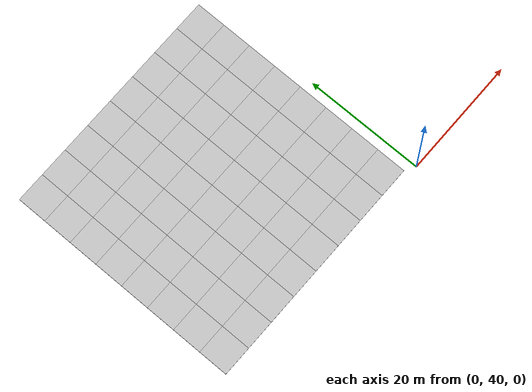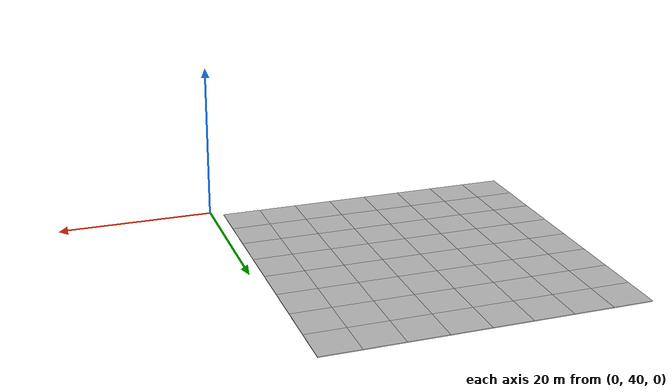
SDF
<sdf version="1.7">
 <world name="default">
  <model name="mud_plane_80x80_1">
   <model name="mud_plane_40x40">
    <model name="mud_plane_20x20">
     <model name="mud_plane">
      <static>1</static>
      <link name="link">
       <collision name="collision"><geometry><box><size>10 10 0.1</size></box></geometry></collision>
       <visual name="visual_1">
        <pose>-2.5 2.5 -0.05 0 -0 0</pose>
        <cast_shadows>0</cast_shadows>
        <geometry><box><size>5 5 0.1</size></box></geometry>
        <material>
         <script>
          <uri>model://mud_plane/materials/scripts</uri>
          <uri>model://mud_plane/materials/textures</uri>
          <name>vrc/mud</name>
         </script>
        </material>
       </visual>
       <visual name="visual_2">
        <pose>2.5 2.5 -0.05 0 -0 0</pose>
        <cast_shadows>0</cast_shadows>
        <geometry><box><size>5 5 0.1</size></box></geometry>
        <material>
         <script>
          <uri>model://mud_plane/materials/scripts</uri>
          <uri>model://mud_plane/materials/textures</uri>
          <name>vrc/mud</name>
         </script>
        </material>
       </visual>
       <visual name="visual_3">
        <pose>2.5 -2.5 -0.05 0 -0 0</pose>
        <cast_shadows>0</cast_shadows>
        <geometry><box><size>5 5 0.1</size></box></geometry>
        <material>
         <script>
          <uri>model://mud_plane/materials/scripts</uri>
          <uri>model://mud_plane/materials/textures</uri>
          <name>vrc/mud</name>
         </script>
        </material>
       </visual>
       <visual name="visual_4">
        <pose>-2.5 -2.5 -0.05 0 -0 0</pose>
        <cast_shadows>0</cast_shadows>
        <geometry><box><size>5 5 0.1</size></box></geometry>
        <material>
         <script>
          <uri>model://mud_plane/materials/scripts</uri>
          <uri>model://mud_plane/materials/textures</uri>
          <name>vrc/mud</name>
         </script>
        </material>
       </visual>
      </link>
      <pose>-4.99986 -4.99991 0 0 -0 0</pose>
     </model>
     <model name="mud_plane_0">
      <static>1</static>
      <link name="link">
       <collision name="collision"><geometry><box><size>10 10 0.1</size></box></geometry></collision>
       <visual name="visual_1">
        <pose>-2.5 2.5 -0.05 0 -0 0</pose>
        <cast_shadows>0</cast_shadows>
        <geometry><box><size>5 5 0.1</size></box></geometry>
        <material>
         <script>
          <uri>model://mud_plane/materials/scripts</uri>
          <uri>model://mud_plane/materials/textures</uri>
          <name>vrc/mud</name>
         </script>
        </material>
       </visual>
       <visual name="visual_2">
        <pose>2.5 2.5 -0.05 0 -0 0</pose>
        <cast_shadows>0</cast_shadows>
        <geometry><box><size>5 5 0.1</size></box></geometry>
        <material>
         <script>
          <uri>model://mud_plane/materials/scripts</uri>
          <uri>model://mud_plane/materials/textures</uri>
          <name>vrc/mud</name>
         </script>
        </material>
       </visual>
       <visual name="visual_3">
        <pose>2.5 -2.5 -0.05 0 -0 0</pose>
        <cast_shadows>0</cast_shadows>
        <geometry><box><size>5 5 0.1</size></box></geometry>
        <material>
         <script>
          <uri>model://mud_plane/materials/scripts</uri>
          <uri>model://mud_plane/materials/textures</uri>
          <name>vrc/mud</name>
         </script>
        </material>
       </visual>
       <visual name="visual_4">
        <pose>-2.5 -2.5 -0.05 0 -0 0</pose>
        <cast_shadows>0</cast_shadows>
        <geometry><box><size>5 5 0.1</size></box></geometry>
        <material>
         <script>
          <uri>model://mud_plane/materials/scripts</uri>
          <uri>model://mud_plane/materials/textures</uri>
          <name>vrc/mud</name>
         </script>
        </material>
       </visual>
      </link>
      <pose>-4.99946 4.99954 0 0 -0 0</pose>
     </model>
     <model name="mud_plane_1">
      <static>1</static>
      <link name="link">
       <collision name="collision"><geometry><box><size>10 10 0.1</size></box></geometry></collision>
       <visual name="visual_1">
        <pose>-2.5 2.5 -0.05 0 -0 0</pose>
        <cast_shadows>0</cast_shadows>
        <geometry><box><size>5 5 0.1</size></box></geometry>
        <material>
         <script>
          <uri>model://mud_plane/materials/scripts</uri>
          <uri>model://mud_plane/materials/textures</uri>
          <name>vrc/mud</name>
         </script>
        </material>
       </visual>
       <visual name="visual_2">
        <pose>2.5 2.5 -0.05 0 -0 0</pose>
        <cast_shadows>0</cast_shadows>
        <geometry><box><size>5 5 0.1</size></box></geometry>
        <material>
         <script>
          <uri>model://mud_plane/materials/scripts</uri>
          <uri>model://mud_plane/materials/textures</uri>
          <name>vrc/mud</name>
         </script>
        </material>
       </visual>
       <visual name="visual_3">
        <pose>2.5 -2.5 -0.05 0 -0 0</pose>
        <cast_shadows>0</cast_shadows>
        <geometry><box><size>5 5 0.1</size></box></geometry>
        <material>
         <script>
          <uri>model://mud_plane/materials/scripts</uri>
          <uri>model://mud_plane/materials/textures</uri>
          <name>vrc/mud</name>
         </script>
        </material>
       </visual>
       <visual name="visual_4">
        <pose>-2.5 -2.5 -0.05 0 -0 0</pose>
        <cast_shadows>0</cast_shadows>
        <geometry><box><size>5 5 0.1</size></box></geometry>
        <material>
         <script>
          <uri>model://mud_plane/materials/scripts</uri>
          <uri>model://mud_plane/materials/textures</uri>
          <name>vrc/mud</name>
         </script>
        </material>
       </visual>
      </link>
      <pose>4.99964 -4.99949 0 0 -0 0</pose>
     </model>
     <model name="mud_plane_2">
      <static>1</static>
      <link name="link">
       <collision name="collision"><geometry><box><size>10 10 0.1</size></box></geometry></collision>
       <visual name="visual_1">
        <pose>-2.5 2.5 -0.05 0 -0 0</pose>
        <cast_shadows>0</cast_shadows>
        <geometry><box><size>5 5 0.1</size></box></geometry>
        <material>
         <script>
          <uri>model://mud_plane/materials/scripts</uri>
          <uri>model://mud_plane/materials/textures</uri>
          <name>vrc/mud</name>
         </script>
        </material>
       </visual>
       <visual name="visual_2">
        <pose>2.5 2.5 -0.05 0 -0 0</pose>
        <cast_shadows>0</cast_shadows>
        <geometry><box><size>5 5 0.1</size></box></geometry>
        <material>
         <script>
          <uri>model://mud_plane/materials/scripts</uri>
          <uri>model://mud_plane/materials/textures</uri>
          <name>vrc/mud</name>
         </script>
        </material>
       </visual>
       <visual name="visual_3">
        <pose>2.5 -2.5 -0.05 0 -0 0</pose>
        <cast_shadows>0</cast_shadows>
        <geometry><box><size>5 5 0.1</size></box></geometry>
        <material>
         <script>
          <uri>model://mud_plane/materials/scripts</uri>
          <uri>model://mud_plane/materials/textures</uri>
          <name>vrc/mud</name>
         </script>
        </material>
       </visual>
       <visual name="visual_4">
        <pose>-2.5 -2.5 -0.05 0 -0 0</pose>
        <cast_shadows>0</cast_shadows>
        <geometry><box><size>5 5 0.1</size></box></geometry>
        <material>
         <script>
          <uri>model://mud_plane/materials/scripts</uri>
          <uri>model://mud_plane/materials/textures</uri>
          <name>vrc/mud</name>
         </script>
        </material>
       </visual>
      </link>
      <pose>4.99967 4.99986 0 0 -0 0</pose>
     </model>
     <static>0</static>
     <pose>-9.99895 9.99843 0 0 -0 0</pose>
    </model>
    <model name="mud_plane_20x20_0">
     <model name="mud_plane">
      <static>1</static>
      <link name="link">
       <collision name="collision"><geometry><box><size>10 10 0.1</size></box></geometry></collision>
       <visual name="visual_1">
        <pose>-2.5 2.5 -0.05 0 -0 0</pose>
        <cast_shadows>0</cast_shadows>
        <geometry><box><size>5 5 0.1</size></box></geometry>
        <material>
         <script>
          <uri>model://mud_plane/materials/scripts</uri>
          <uri>model://mud_plane/materials/textures</uri>
          <name>vrc/mud</name>
         </script>
        </material>
       </visual>
       <visual name="visual_2">
        <pose>2.5 2.5 -0.05 0 -0 0</pose>
        <cast_shadows>0</cast_shadows>
        <geometry><box><size>5 5 0.1</size></box></geometry>
        <material>
         <script>
          <uri>model://mud_plane/materials/scripts</uri>
          <uri>model://mud_plane/materials/textures</uri>
          <name>vrc/mud</name>
         </script>
        </material>
       </visual>
       <visual name="visual_3">
        <pose>2.5 -2.5 -0.05 0 -0 0</pose>
        <cast_shadows>0</cast_shadows>
        <geometry><box><size>5 5 0.1</size></box></geometry>
        <material>
         <script>
          <uri>model://mud_plane/materials/scripts</uri>
          <uri>model://mud_plane/materials/textures</uri>
          <name>vrc/mud</name>
         </script>
        </material>
       </visual>
       <visual name="visual_4">
        <pose>-2.5 -2.5 -0.05 0 -0 0</pose>
        <cast_shadows>0</cast_shadows>
        <geometry><box><size>5 5 0.1</size></box></geometry>
        <material>
         <script>
          <uri>model://mud_plane/materials/scripts</uri>
          <uri>model://mud_plane/materials/textures</uri>
          <name>vrc/mud</name>
         </script>
        </material>
       </visual>
      </link>
      <pose>-4.99986 -4.99991 0 0 -0 0</pose>
     </model>
     <model name="mud_plane_0">
      <static>1</static>
      <link name="link">
       <collision name="collision"><geometry><box><size>10 10 0.1</size></box></geometry></collision>
       <visual name="visual_1">
        <pose>-2.5 2.5 -0.05 0 -0 0</pose>
        <cast_shadows>0</cast_shadows>
        <geometry><box><size>5 5 0.1</size></box></geometry>
        <material>
         <script>
          <uri>model://mud_plane/materials/scripts</uri>
          <uri>model://mud_plane/materials/textures</uri>
          <name>vrc/mud</name>
         </script>
        </material>
       </visual>
       <visual name="visual_2">
        <pose>2.5 2.5 -0.05 0 -0 0</pose>
        <cast_shadows>0</cast_shadows>
        <geometry><box><size>5 5 0.1</size></box></geometry>
        <material>
         <script>
          <uri>model://mud_plane/materials/scripts</uri>
          <uri>model://mud_plane/materials/textures</uri>
          <name>vrc/mud</name>
         </script>
        </material>
       </visual>
       <visual name="visual_3">
        <pose>2.5 -2.5 -0.05 0 -0 0</pose>
        <cast_shadows>0</cast_shadows>
        <geometry><box><size>5 5 0.1</size></box></geometry>
        <material>
         <script>
          <uri>model://mud_plane/materials/scripts</uri>
          <uri>model://mud_plane/materials/textures</uri>
          <name>vrc/mud</name>
         </script>
        </material>
       </visual>
       <visual name="visual_4">
        <pose>-2.5 -2.5 -0.05 0 -0 0</pose>
        <cast_shadows>0</cast_shadows>
        <geometry><box><size>5 5 0.1</size></box></geometry>
        <material>
         <script>
          <uri>model://mud_plane/materials/scripts</uri>
          <uri>model://mud_plane/materials/textures</uri>
          <name>vrc/mud</name>
         </script>
        </material>
       </visual>
      </link>
      <pose>-4.99946 4.99954 0 0 -0 0</pose>
     </model>
     <model name="mud_plane_1">
      <static>1</static>
      <link name="link">
       <collision name="collision"><geometry><box><size>10 10 0.1</size></box></geometry></collision>
       <visual name="visual_1">
        <pose>-2.5 2.5 -0.05 0 -0 0</pose>
        <cast_shadows>0</cast_shadows>
        <geometry><box><size>5 5 0.1</size></box></geometry>
        <material>
         <script>
          <uri>model://mud_plane/materials/scripts</uri>
          <uri>model://mud_plane/materials/textures</uri>
          <name>vrc/mud</name>
         </script>
        </material>
       </visual>
       <visual name="visual_2">
        <pose>2.5 2.5 -0.05 0 -0 0</pose>
        <cast_shadows>0</cast_shadows>
        <geometry><box><size>5 5 0.1</size></box></geometry>
        <material>
         <script>
          <uri>model://mud_plane/materials/scripts</uri>
          <uri>model://mud_plane/materials/textures</uri>
          <name>vrc/mud</name>
         </script>
        </material>
       </visual>
       <visual name="visual_3">
        <pose>2.5 -2.5 -0.05 0 -0 0</pose>
        <cast_shadows>0</cast_shadows>
        <geometry><box><size>5 5 0.1</size></box></geometry>
        <material>
         <script>
          <uri>model://mud_plane/materials/scripts</uri>
          <uri>model://mud_plane/materials/textures</uri>
          <name>vrc/mud</name>
         </script>
        </material>
       </visual>
       <visual name="visual_4">
        <pose>-2.5 -2.5 -0.05 0 -0 0</pose>
        <cast_shadows>0</cast_shadows>
        <geometry><box><size>5 5 0.1</size></box></geometry>
        <material>
         <script>
          <uri>model://mud_plane/materials/scripts</uri>
          <uri>model://mud_plane/materials/textures</uri>
          <name>vrc/mud</name>
         </script>
        </material>
       </visual>
      </link>
      <pose>4.99964 -4.99949 0 0 -0 0</pose>
     </model>
     <model name="mud_plane_2">
      <static>1</static>
      <link name="link">
       <collision name="collision"><geometry><box><size>10 10 0.1</size></box></geometry></collision>
       <visual name="visual_1">
        <pose>-2.5 2.5 -0.05 0 -0 0</pose>
        <cast_shadows>0</cast_shadows>
        <geometry><box><size>5 5 0.1</size></box></geometry>
        <material>
         <script>
          <uri>model://mud_plane/materials/scripts</uri>
          <uri>model://mud_plane/materials/textures</uri>
          <name>vrc/mud</name>
         </script>
        </material>
       </visual>
       <visual name="visual_2">
        <pose>2.5 2.5 -0.05 0 -0 0</pose>
        <cast_shadows>0</cast_shadows>
        <geometry><box><size>5 5 0.1</size></box></geometry>
        <material>
         <script>
          <uri>model://mud_plane/materials/scripts</uri>
          <uri>model://mud_plane/materials/textures</uri>
          <name>vrc/mud</name>
         </script>
        </material>
       </visual>
       <visual name="visual_3">
        <pose>2.5 -2.5 -0.05 0 -0 0</pose>
        <cast_shadows>0</cast_shadows>
        <geometry><box><size>5 5 0.1</size></box></geometry>
        <material>
         <script>
          <uri>model://mud_plane/materials/scripts</uri>
          <uri>model://mud_plane/materials/textures</uri>
          <name>vrc/mud</name>
         </script>
        </material>
       </visual>
       <visual name="visual_4">
        <pose>-2.5 -2.5 -0.05 0 -0 0</pose>
        <cast_shadows>0</cast_shadows>
        <geometry><box><size>5 5 0.1</size></box></geometry>
        <material>
         <script>
          <uri>model://mud_plane/materials/scripts</uri>
          <uri>model://mud_plane/materials/textures</uri>
          <name>vrc/mud</name>
         </script>
        </material>
       </visual>
      </link>
      <pose>4.99967 4.99986 0 0 -0 0</pose>
     </model>
     <static>0</static>
     <pose>9.99933 9.9997 0 0 -0 0</pose>
    </model>
    <model name="mud_plane_20x20_1">
     <model name="mud_plane">
      <static>1</static>
      <link name="link">
       <collision name="collision"><geometry><box><size>10 10 0.1</size></box></geometry></collision>
       <visual name="visual_1">
        <pose>-2.5 2.5 -0.05 0 -0 0</pose>
        <cast_shadows>0</cast_shadows>
        <geometry><box><size>5 5 0.1</size></box></geometry>
        <material>
         <script>
          <uri>model://mud_plane/materials/scripts</uri>
          <uri>model://mud_plane/materials/textures</uri>
          <name>vrc/mud</name>
         </script>
        </material>
       </visual>
       <visual name="visual_2">
        <pose>2.5 2.5 -0.05 0 -0 0</pose>
        <cast_shadows>0</cast_shadows>
        <geometry><box><size>5 5 0.1</size></box></geometry>
        <material>
         <script>
          <uri>model://mud_plane/materials/scripts</uri>
          <uri>model://mud_plane/materials/textures</uri>
          <name>vrc/mud</name>
         </script>
        </material>
       </visual>
       <visual name="visual_3">
        <pose>2.5 -2.5 -0.05 0 -0 0</pose>
        <cast_shadows>0</cast_shadows>
        <geometry><box><size>5 5 0.1</size></box></geometry>
        <material>
         <script>
          <uri>model://mud_plane/materials/scripts</uri>
          <uri>model://mud_plane/materials/textures</uri>
          <name>vrc/mud</name>
         </script>
        </material>
       </visual>
       <visual name="visual_4">
        <pose>-2.5 -2.5 -0.05 0 -0 0</pose>
        <cast_shadows>0</cast_shadows>
        <geometry><box><size>5 5 0.1</size></box></geometry>
        <material>
         <script>
          <uri>model://mud_plane/materials/scripts</uri>
          <uri>model://mud_plane/materials/textures</uri>
          <name>vrc/mud</name>
         </script>
        </material>
       </visual>
      </link>
      <pose>-4.99986 -4.99991 0 0 -0 0</pose>
     </model>
     <model name="mud_plane_0">
      <static>1</static>
      <link name="link">
       <collision name="collision"><geometry><box><size>10 10 0.1</size></box></geometry></collision>
       <visual name="visual_1">
        <pose>-2.5 2.5 -0.05 0 -0 0</pose>
        <cast_shadows>0</cast_shadows>
        <geometry><box><size>5 5 0.1</size></box></geometry>
        <material>
         <script>
          <uri>model://mud_plane/materials/scripts</uri>
          <uri>model://mud_plane/materials/textures</uri>
          <name>vrc/mud</name>
         </script>
        </material>
       </visual>
       <visual name="visual_2">
        <pose>2.5 2.5 -0.05 0 -0 0</pose>
        <cast_shadows>0</cast_shadows>
        <geometry><box><size>5 5 0.1</size></box></geometry>
        <material>
         <script>
          <uri>model://mud_plane/materials/scripts</uri>
          <uri>model://mud_plane/materials/textures</uri>
          <name>vrc/mud</name>
         </script>
        </material>
       </visual>
       <visual name="visual_3">
        <pose>2.5 -2.5 -0.05 0 -0 0</pose>
        <cast_shadows>0</cast_shadows>
        <geometry><box><size>5 5 0.1</size></box></geometry>
        <material>
         <script>
          <uri>model://mud_plane/materials/scripts</uri>
          <uri>model://mud_plane/materials/textures</uri>
          <name>vrc/mud</name>
         </script>
        </material>
       </visual>
       <visual name="visual_4">
        <pose>-2.5 -2.5 -0.05 0 -0 0</pose>
        <cast_shadows>0</cast_shadows>
        <geometry><box><size>5 5 0.1</size></box></geometry>
        <material>
         <script>
          <uri>model://mud_plane/materials/scripts</uri>
          <uri>model://mud_plane/materials/textures</uri>
          <name>vrc/mud</name>
         </script>
        </material>
       </visual>
      </link>
      <pose>-4.99946 4.99954 0 0 -0 0</pose>
     </model>
     <model name="mud_plane_1">
      <static>1</static>
      <link name="link">
       <collision name="collision"><geometry><box><size>10 10 0.1</size></box></geometry></collision>
       <visual name="visual_1">
        <pose>-2.5 2.5 -0.05 0 -0 0</pose>
        <cast_shadows>0</cast_shadows>
        <geometry><box><size>5 5 0.1</size></box></geometry>
        <material>
         <script>
          <uri>model://mud_plane/materials/scripts</uri>
          <uri>model://mud_plane/materials/textures</uri>
          <name>vrc/mud</name>
         </script>
        </material>
       </visual>
       <visual name="visual_2">
        <pose>2.5 2.5 -0.05 0 -0 0</pose>
        <cast_shadows>0</cast_shadows>
        <geometry><box><size>5 5 0.1</size></box></geometry>
        <material>
         <script>
          <uri>model://mud_plane/materials/scripts</uri>
          <uri>model://mud_plane/materials/textures</uri>
          <name>vrc/mud</name>
         </script>
        </material>
       </visual>
       <visual name="visual_3">
        <pose>2.5 -2.5 -0.05 0 -0 0</pose>
        <cast_shadows>0</cast_shadows>
        <geometry><box><size>5 5 0.1</size></box></geometry>
        <material>
         <script>
          <uri>model://mud_plane/materials/scripts</uri>
          <uri>model://mud_plane/materials/textures</uri>
          <name>vrc/mud</name>
         </script>
        </material>
       </visual>
       <visual name="visual_4">
        <pose>-2.5 -2.5 -0.05 0 -0 0</pose>
        <cast_shadows>0</cast_shadows>
        <geometry><box><size>5 5 0.1</size></box></geometry>
        <material>
         <script>
          <uri>model://mud_plane/materials/scripts</uri>
          <uri>model://mud_plane/materials/textures</uri>
          <name>vrc/mud</name>
         </script>
        </material>
       </visual>
      </link>
      <pose>4.99964 -4.99949 0 0 -0 0</pose>
     </model>
     <model name="mud_plane_2">
      <static>1</static>
      <link name="link">
       <collision name="collision"><geometry><box><size>10 10 0.1</size></box></geometry></collision>
       <visual name="visual_1">
        <pose>-2.5 2.5 -0.05 0 -0 0</pose>
        <cast_shadows>0</cast_shadows>
        <geometry><box><size>5 5 0.1</size></box></geometry>
        <material>
         <script>
          <uri>model://mud_plane/materials/scripts</uri>
          <uri>model://mud_plane/materials/textures</uri>
          <name>vrc/mud</name>
         </script>
        </material>
       </visual>
       <visual name="visual_2">
        <pose>2.5 2.5 -0.05 0 -0 0</pose>
        <cast_shadows>0</cast_shadows>
        <geometry><box><size>5 5 0.1</size></box></geometry>
        <material>
         <script>
          <uri>model://mud_plane/materials/scripts</uri>
          <uri>model://mud_plane/materials/textures</uri>
          <name>vrc/mud</name>
         </script>
        </material>
       </visual>
       <visual name="visual_3">
        <pose>2.5 -2.5 -0.05 0 -0 0</pose>
        <cast_shadows>0</cast_shadows>
        <geometry><box><size>5 5 0.1</size></box></geometry>
        <material>
         <script>
          <uri>model://mud_plane/materials/scripts</uri>
          <uri>model://mud_plane/materials/textures</uri>
          <name>vrc/mud</name>
         </script>
        </material>
       </visual>
       <visual name="visual_4">
        <pose>-2.5 -2.5 -0.05 0 -0 0</pose>
        <cast_shadows>0</cast_shadows>
        <geometry><box><size>5 5 0.1</size></box></geometry>
        <material>
         <script>
          <uri>model://mud_plane/materials/scripts</uri>
          <uri>model://mud_plane/materials/textures</uri>
          <name>vrc/mud</name>
         </script>
        </material>
       </visual>
      </link>
      <pose>4.99967 4.99986 0 0 -0 0</pose>
     </model>
     <static>0</static>
     <pose>9.9993 -9.99877 0 0 -0 0</pose>
    </model>
    <model name="mud_plane_20x20_2">
     <model name="mud_plane">
      <static>1</static>
      <link name="link">
       <collision name="collision"><geometry><box><size>10 10 0.1</size></box></geometry></collision>
       <visual name="visual_1">
        <pose>-2.5 2.5 -0.05 0 -0 0</pose>
        <cast_shadows>0</cast_shadows>
        <geometry><box><size>5 5 0.1</size></box></geometry>
        <material>
         <script>
          <uri>model://mud_plane/materials/scripts</uri>
          <uri>model://mud_plane/materials/textures</uri>
          <name>vrc/mud</name>
         </script>
        </material>
       </visual>
       <visual name="visual_2">
        <pose>2.5 2.5 -0.05 0 -0 0</pose>
        <cast_shadows>0</cast_shadows>
        <geometry><box><size>5 5 0.1</size></box></geometry>
        <material>
         <script>
          <uri>model://mud_plane/materials/scripts</uri>
          <uri>model://mud_plane/materials/textures</uri>
          <name>vrc/mud</name>
         </script>
        </material>
       </visual>
       <visual name="visual_3">
        <pose>2.5 -2.5 -0.05 0 -0 0</pose>
        <cast_shadows>0</cast_shadows>
        <geometry><box><size>5 5 0.1</size></box></geometry>
        <material>
         <script>
          <uri>model://mud_plane/materials/scripts</uri>
          <uri>model://mud_plane/materials/textures</uri>
          <name>vrc/mud</name>
         </script>
        </material>
       </visual>
       <visual name="visual_4">
        <pose>-2.5 -2.5 -0.05 0 -0 0</pose>
        <cast_shadows>0</cast_shadows>
        <geometry><box><size>5 5 0.1</size></box></geometry>
        <material>
         <script>
          <uri>model://mud_plane/materials/scripts</uri>
          <uri>model://mud_plane/materials/textures</uri>
          <name>vrc/mud</name>
         </script>
        </material>
       </visual>
      </link>
      <pose>-4.99986 -4.99991 0 0 -0 0</pose>
     </model>
     <model name="mud_plane_0">
      <static>1</static>
      <link name="link">
       <collision name="collision"><geometry><box><size>10 10 0.1</size></box></geometry></collision>
       <visual name="visual_1">
        <pose>-2.5 2.5 -0.05 0 -0 0</pose>
        <cast_shadows>0</cast_shadows>
        <geometry><box><size>5 5 0.1</size></box></geometry>
        <material>
         <script>
          <uri>model://mud_plane/materials/scripts</uri>
          <uri>model://mud_plane/materials/textures</uri>
          <name>vrc/mud</name>
         </script>
        </material>
       </visual>
       <visual name="visual_2">
        <pose>2.5 2.5 -0.05 0 -0 0</pose>
        <cast_shadows>0</cast_shadows>
        <geometry><box><size>5 5 0.1</size></box></geometry>
        <material>
         <script>
          <uri>model://mud_plane/materials/scripts</uri>
          <uri>model://mud_plane/materials/textures</uri>
          <name>vrc/mud</name>
         </script>
        </material>
       </visual>
       <visual name="visual_3">
        <pose>2.5 -2.5 -0.05 0 -0 0</pose>
        <cast_shadows>0</cast_shadows>
        <geometry><box><size>5 5 0.1</size></box></geometry>
        <material>
         <script>
          <uri>model://mud_plane/materials/scripts</uri>
          <uri>model://mud_plane/materials/textures</uri>
          <name>vrc/mud</name>
         </script>
        </material>
       </visual>
       <visual name="visual_4">
        <pose>-2.5 -2.5 -0.05 0 -0 0</pose>
        <cast_shadows>0</cast_shadows>
        <geometry><box><size>5 5 0.1</size></box></geometry>
        <material>
         <script>
          <uri>model://mud_plane/materials/scripts</uri>
          <uri>model://mud_plane/materials/textures</uri>
          <name>vrc/mud</name>
         </script>
        </material>
       </visual>
      </link>
      <pose>-4.99946 4.99954 0 0 -0 0</pose>
     </model>
     <model name="mud_plane_1">
      <static>1</static>
      <link name="link">
       <collision name="collision"><geometry><box><size>10 10 0.1</size></box></geometry></collision>
       <visual name="visual_1">
        <pose>-2.5 2.5 -0.05 0 -0 0</pose>
        <cast_shadows>0</cast_shadows>
        <geometry><box><size>5 5 0.1</size></box></geometry>
        <material>
         <script>
          <uri>model://mud_plane/materials/scripts</uri>
          <uri>model://mud_plane/materials/textures</uri>
          <name>vrc/mud</name>
         </script>
        </material>
       </visual>
       <visual name="visual_2">
        <pose>2.5 2.5 -0.05 0 -0 0</pose>
        <cast_shadows>0</cast_shadows>
        <geometry><box><size>5 5 0.1</size></box></geometry>
        <material>
         <script>
          <uri>model://mud_plane/materials/scripts</uri>
          <uri>model://mud_plane/materials/textures</uri>
          <name>vrc/mud</name>
         </script>
        </material>
       </visual>
       <visual name="visual_3">
        <pose>2.5 -2.5 -0.05 0 -0 0</pose>
        <cast_shadows>0</cast_shadows>
        <geometry><box><size>5 5 0.1</size></box></geometry>
        <material>
         <script>
          <uri>model://mud_plane/materials/scripts</uri>
          <uri>model://mud_plane/materials/textures</uri>
          <name>vrc/mud</name>
         </script>
        </material>
       </visual>
       <visual name="visual_4">
        <pose>-2.5 -2.5 -0.05 0 -0 0</pose>
        <cast_shadows>0</cast_shadows>
        <geometry><box><size>5 5 0.1</size></box></geometry>
        <material>
         <script>
          <uri>model://mud_plane/materials/scripts</uri>
          <uri>model://mud_plane/materials/textures</uri>
          <name>vrc/mud</name>
         </script>
        </material>
       </visual>
      </link>
      <pose>4.99964 -4.99949 0 0 -0 0</pose>
     </model>
     <model name="mud_plane_2">
      <static>1</static>
      <link name="link">
       <collision name="collision"><geometry><box><size>10 10 0.1</size></box></geometry></collision>
       <visual name="visual_1">
        <pose>-2.5 2.5 -0.05 0 -0 0</pose>
        <cast_shadows>0</cast_shadows>
        <geometry><box><size>5 5 0.1</size></box></geometry>
        <material>
         <script>
          <uri>model://mud_plane/materials/scripts</uri>
          <uri>model://mud_plane/materials/textures</uri>
          <name>vrc/mud</name>
         </script>
        </material>
       </visual>
       <visual name="visual_2">
        <pose>2.5 2.5 -0.05 0 -0 0</pose>
        <cast_shadows>0</cast_shadows>
        <geometry><box><size>5 5 0.1</size></box></geometry>
        <material>
         <script>
          <uri>model://mud_plane/materials/scripts</uri>
          <uri>model://mud_plane/materials/textures</uri>
          <name>vrc/mud</name>
         </script>
        </material>
       </visual>
       <visual name="visual_3">
        <pose>2.5 -2.5 -0.05 0 -0 0</pose>
        <cast_shadows>0</cast_shadows>
        <geometry><box><size>5 5 0.1</size></box></geometry>
        <material>
         <script>
          <uri>model://mud_plane/materials/scripts</uri>
          <uri>model://mud_plane/materials/textures</uri>
          <name>vrc/mud</name>
         </script>
        </material>
       </visual>
       <visual name="visual_4">
        <pose>-2.5 -2.5 -0.05 0 -0 0</pose>
        <cast_shadows>0</cast_shadows>
        <geometry><box><size>5 5 0.1</size></box></geometry>
        <material>
         <script>
          <uri>model://mud_plane/materials/scripts</uri>
          <uri>model://mud_plane/materials/textures</uri>
          <name>vrc/mud</name>
         </script>
        </material>
       </visual>
      </link>
      <pose>4.99967 4.99986 0 0 -0 0</pose>
     </model>
     <static>0</static>
     <pose>-9.99969 -9.99935 0 0 -0 0</pose>
    </model>
    <static>0</static>
    <pose>19.9986 19.9995 0 0 -0 0</pose>
   </model>
   <static>0</static>
   <pose>-41.5873 41.0041 0 0 -0 0</pose>
  </model>
 </world>
</sdf>
